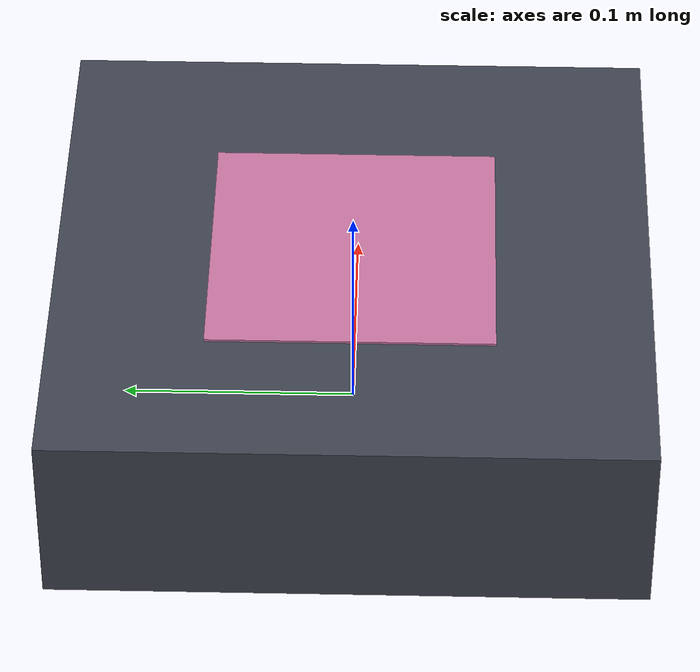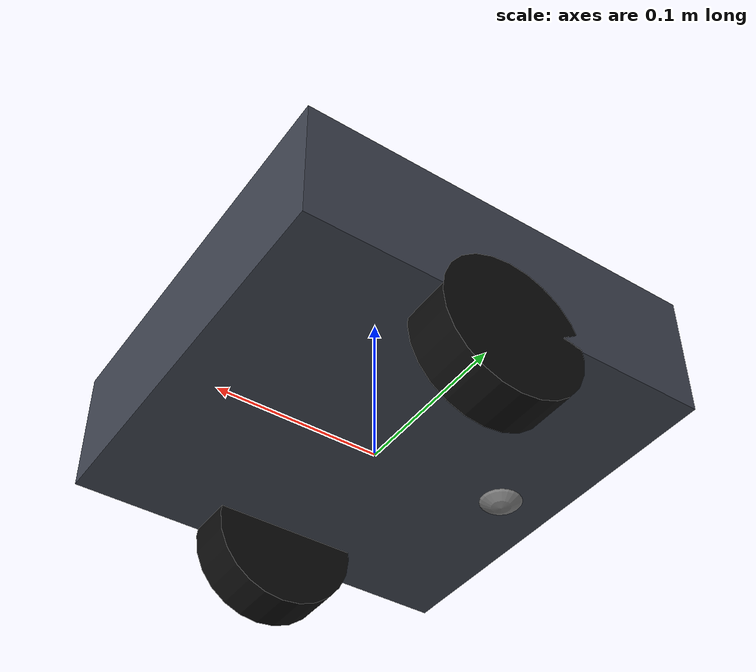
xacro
<?xml version="1.0"?>
<robot xmlns:xacro="http://www.ros.org/wiki/xacro">

  <xacro:property name="chassis_length" value="0.25"/>
  <xacro:property name="chassis_width"  value="0.25"/>
  <xacro:property name="chassis_height" value="0.08"/>
  <xacro:property name="chassis_mass"   value="1.2"/>

  <xacro:property name="wheel_radius"   value="0.045"/>
  <xacro:property name="wheel_width"    value="0.03"/>
  <xacro:property name="wheel_mass"     value="0.10"/>
  <!-- Empattement (distance entre les 2 roues motrices) -->
  <xacro:property name="wheel_separation" value="0.22"/>
  <xacro:property name="wheel_x_offset" value="0.0"/>
  <xacro:property name="wheel_z_offset" value="0.0"/>

  <xacro:property name="caster_radius" value="0.02"/>
  <xacro:property name="caster_mass"   value="0.05"/>

  <material name="chassis_grey">
    <color rgba="0.25 0.27 0.32 1.0"/>
  </material>
  <material name="wheel_black">
    <color rgba="0.05 0.05 0.05 1.0"/>
  </material>
  <material name="caster_grey">
    <color rgba="0.5 0.5 0.5 1.0"/>
  </material>
  <material name="imu_red">
    <color rgba="0.8 0.1 0.1 1.0"/>
  </material>

  <xacro:macro name="box_inertia" params="mass x y z">
    <inertia
      ixx="${mass/12.0*(y*y+z*z)}" ixy="0.0" ixz="0.0"
      iyy="${mass/12.0*(x*x+z*z)}" iyz="0.0"
      izz="${mass/12.0*(x*x+y*y)}"/>
  </xacro:macro>

  <xacro:macro name="cylinder_inertia" params="mass r h">
    <inertia
      ixx="${mass/12.0*(3*r*r+h*h)}" ixy="0.0" ixz="0.0"
      iyy="${mass/12.0*(3*r*r+h*h)}" iyz="0.0"
      izz="${mass/2.0*r*r}"/>
  </xacro:macro>

  <xacro:macro name="sphere_inertia" params="mass r">
    <inertia
      ixx="${2.0/5.0*mass*r*r}" ixy="0.0" ixz="0.0"
      iyy="${2.0/5.0*mass*r*r}" iyz="0.0"
      izz="${2.0/5.0*mass*r*r}"/>
  </xacro:macro>

  <!-- ============================ BASE LINK ============================ -->
  <link name="base_link"/>

  <joint name="base_to_chassis" type="fixed">
    <parent link="base_link"/>
    <child link="chassis_link"/>
    <origin xyz="0 0 ${wheel_radius}" rpy="0 0 0"/>
  </joint>

  <link name="chassis_link">
    <visual>
      <origin xyz="0 0 0" rpy="0 0 0"/>
      <geometry>
        <box size="${chassis_length} ${chassis_width} ${chassis_height}"/>
      </geometry>
      <material name="chassis_grey"/>
    </visual>
    <collision>
      <origin xyz="0 0 0" rpy="0 0 0"/>
      <geometry>
        <box size="${chassis_length} ${chassis_width} ${chassis_height}"/>
      </geometry>
    </collision>
    <inertial>
      <origin xyz="0 0 0" rpy="0 0 0"/>
      <mass value="${chassis_mass}"/>
      <xacro:box_inertia mass="${chassis_mass}" x="${chassis_length}" y="${chassis_width}" z="${chassis_height}"/>
    </inertial>
  </link>

  <!-- ============================ WHEELS ============================ -->
  <xacro:macro name="wheel_link" params="prefix reflect">
    <link name="${prefix}_wheel_link">
      <visual>
        <origin xyz="0 0 0" rpy="1.5707963267948966 0 0"/>
        <geometry>
          <cylinder radius="${wheel_radius}" length="${wheel_width}"/>
        </geometry>
        <material name="wheel_black"/>
      </visual>
      <collision>
        <origin xyz="0 0 0" rpy="1.5707963267948966 0 0"/>
        <geometry>
          <cylinder radius="${wheel_radius}" length="${wheel_width}"/>
        </geometry>
      </collision>
      <inertial>
        <origin xyz="0 0 0" rpy="0 0 0"/>
        <mass value="${wheel_mass}"/>
        <xacro:cylinder_inertia mass="${wheel_mass}" r="${wheel_radius}" h="${wheel_width}"/>
      </inertial>
    </link>

    <joint name="${prefix}_wheel_joint" type="continuous">
      <parent link="chassis_link"/>
      <child link="${prefix}_wheel_link"/>
      <origin xyz="${wheel_x_offset} ${reflect*wheel_separation/2.0} ${wheel_z_offset - wheel_radius}" rpy="0 0 0"/>
      <axis xyz="0 1 0"/>
      <dynamics damping="0.05" friction="0.02"/>
    </joint>
  </xacro:macro>

  <xacro:wheel_link prefix="left"  reflect="1.0"/>
  <xacro:wheel_link prefix="right" reflect="-1.0"/>

  <!-- ============================ CASTER (roulette folle) ============================ -->
  <link name="caster_wheel_link">
    <visual>
      <geometry><sphere radius="${caster_radius}"/></geometry>
      <material name="caster_grey"/>
    </visual>
    <collision>
      <geometry><sphere radius="${caster_radius}"/></geometry>
    </collision>
    <inertial>
      <mass value="${caster_mass}"/>
      <xacro:sphere_inertia mass="${caster_mass}" r="${caster_radius}"/>
    </inertial>
  </link>

  <joint name="caster_joint" type="fixed">
    <parent link="chassis_link"/>
    <child link="caster_wheel_link"/>
    <origin xyz="-0.09 0 ${-(wheel_radius - caster_radius)}" rpy="0 0 0"/>
  </joint>

  <!-- ============================ IMU ============================ -->
  <link name="imu_link">
    <visual>
      <geometry><box size="0.02 0.02 0.01"/></geometry>
      <material name="imu_red"/>
    </visual>
    <inertial>
      <mass value="0.01"/>
      <inertia ixx="1e-6" ixy="0" ixz="0" iyy="1e-6" iyz="0" izz="1e-6"/>
    </inertial>
  </link>

  <joint name="imu_joint" type="fixed">
    <parent link="chassis_link"/>
    <child link="imu_link"/>
    <origin xyz="0 0 0" rpy="0 0 0"/>
  </joint>

  <!-- ============================ ARUCO MARKER (top) ============================ -->
  <link name="aruco_marker_link">
    <visual>
      <origin xyz="0 0 0" rpy="0 0 0"/>
      <geometry><box size="0.12 0.12 0.001"/></geometry>
    </visual>
    <inertial>
      <mass value="0.001"/>
      <inertia ixx="1e-7" ixy="0" ixz="0" iyy="1e-7" iyz="0" izz="1e-7"/>
    </inertial>
  </link>

  <joint name="aruco_marker_joint" type="fixed">
    <parent link="chassis_link"/>
    <child link="aruco_marker_link"/>
    <!-- Elevate it cleanly to be precisely on top of chassis -->
    <origin xyz="0 0 ${chassis_height/2.0 + 0.001}" rpy="0 0 0"/>
  </joint>

</robot>
